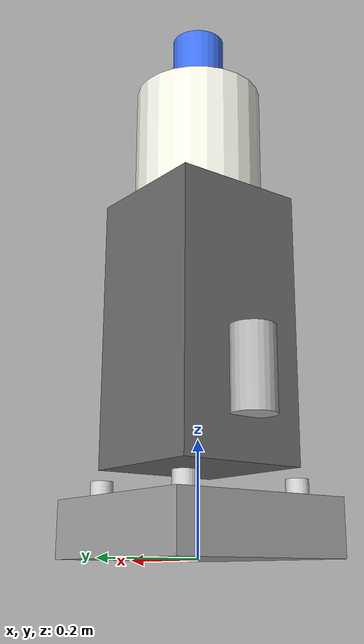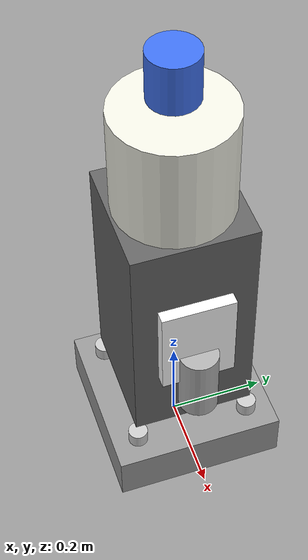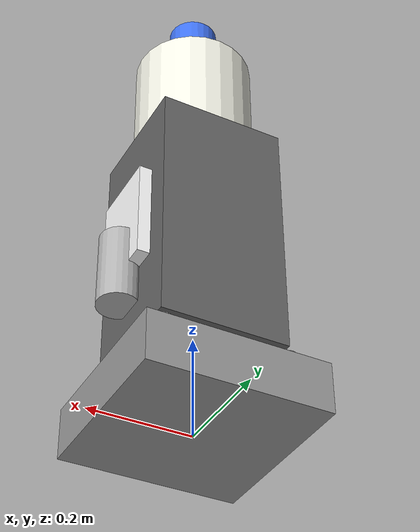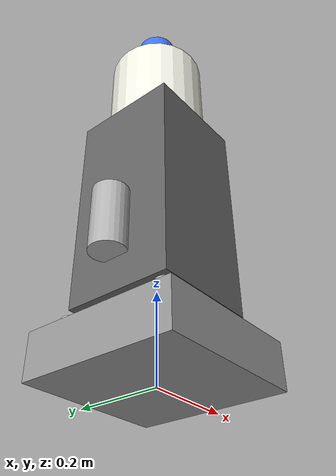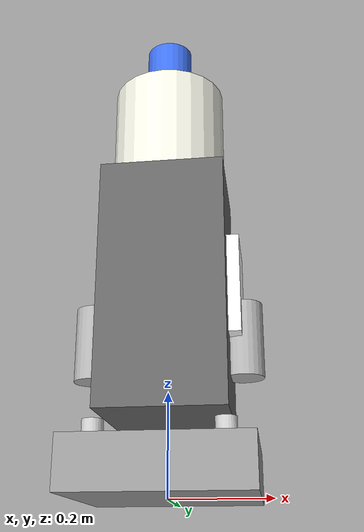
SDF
<?xml version="1.0"?>

<sdf version="1.10">

<model name="pt_transformer_c">

  <static>true</static>

  <link name="body">

    <!-- MAIN PT HOUSING -->
    <visual name="pt_body">
      <pose>0 0 0.4 0 0 0</pose>
      <geometry>
        <box>
          <size>0.25 0.25 0.5</size>
        </box>
      </geometry>
      <material>
        <ambient>0.3 0.3 0.3 1</ambient>
        <diffuse>0.4 0.4 0.4 1</diffuse>
      </material>
    </visual>

    <!-- PORCELAIN INSULATOR (PRIMARY) -->
    <visual name="primary_insulator">
      <pose>0 0 0.75 0 0 0</pose>
      <geometry>
        <cylinder>
          <radius>0.12</radius>
          <length>0.25</length>
        </cylinder>
      </geometry>
      <material>
        <ambient>0.9 0.9 0.85 1</ambient>
        <diffuse>0.95 0.95 0.9 1</diffuse>
        <specular>0.3 0.3 0.3 1</specular>
      </material>
    </visual>

    <!-- TERMINAL STUDS -->
    <visual name="terminal_primary">
      <pose>0 0 0.95 0 0 0</pose>
      <geometry>
        <cylinder>
          <radius>0.05</radius>
          <length>0.1</length>
        </cylinder>
      </geometry>
      <material>
        <ambient>0.15 0.35 0.85 1</ambient>
        <diffuse>0.25 0.45 0.95 1</diffuse>
      </material>
    </visual>

    <!-- SECONDARY TERMINALS (SIDE) -->
    <visual name="terminal_sec_1">
      <pose>0.15 0 0.3 0 0 0</pose>
      <geometry>
        <cylinder>
          <radius>0.04</radius>
          <length>0.15</length>
        </cylinder>
      </geometry>
      <material>
        <ambient>0.6 0.6 0.6 1</ambient>
        <diffuse>0.7 0.7 0.7 1</diffuse>
      </material>
    </visual>

    <visual name="terminal_sec_2">
      <pose>-0.15 0 0.3 0 0 0</pose>
      <geometry>
        <cylinder>
          <radius>0.04</radius>
          <length>0.15</length>
        </cylinder>
      </geometry>
      <material>
        <ambient>0.6 0.6 0.6 1</ambient>
        <diffuse>0.7 0.7 0.7 1</diffuse>
      </material>
    </visual>

    <!-- MOUNTING BASE -->
    <visual name="base_plate">
      <pose>0 0 0.05 0 0 0</pose>
      <geometry>
        <box>
          <size>0.35 0.35 0.1</size>
        </box>
      </geometry>
      <material>
        <ambient>0.5 0.5 0.5 1</ambient>
        <diffuse>0.6 0.6 0.6 1</diffuse>
      </material>
    </visual>

    <!-- MOUNTING STUDS -->
    <visual name="stud_1">
      <pose>-0.12 -0.12 0.08 0 0 0</pose>
      <geometry>
        <cylinder>
          <radius>0.02</radius>
          <length>0.1</length>
        </cylinder>
      </geometry>
      <material>
        <ambient>0.7 0.7 0.7 1</ambient>
        <diffuse>0.8 0.8 0.8 1</diffuse>
      </material>
    </visual>

    <visual name="stud_2">
      <pose>0.12 -0.12 0.08 0 0 0</pose>
      <geometry>
        <cylinder>
          <radius>0.02</radius>
          <length>0.1</length>
        </cylinder>
      </geometry>
      <material>
        <ambient>0.7 0.7 0.7 1</ambient>
        <diffuse>0.8 0.8 0.8 1</diffuse>
      </material>
    </visual>

    <visual name="stud_3">
      <pose>-0.12 0.12 0.08 0 0 0</pose>
      <geometry>
        <cylinder>
          <radius>0.02</radius>
          <length>0.1</length>
        </cylinder>
      </geometry>
      <material>
        <ambient>0.7 0.7 0.7 1</ambient>
        <diffuse>0.8 0.8 0.8 1</diffuse>
      </material>
    </visual>

    <visual name="stud_4">
      <pose>0.12 0.12 0.08 0 0 0</pose>
      <geometry>
        <cylinder>
          <radius>0.02</radius>
          <length>0.1</length>
        </cylinder>
      </geometry>
      <material>
        <ambient>0.7 0.7 0.7 1</ambient>
        <diffuse>0.8 0.8 0.8 1</diffuse>
      </material>
    </visual>

    <!-- NAMEPLATE -->
    <visual name="nameplate">
      <pose>0.125 0 0.4 0 0 0</pose>
      <geometry>
        <box>
          <size>0.05 0.15 0.2</size>
        </box>
      </geometry>
      <material>
        <ambient>0.95 0.95 0.95 1</ambient>
        <diffuse>1 1 1 1</diffuse>
      </material>
    </visual>

    <!-- COLLISION -->
    <collision name="collision">
      <pose>0 0 0.4 0 0 0</pose>
      <geometry>
        <box>
          <size>0.3 0.3 0.8</size>
        </box>
      </geometry>
    </collision>

  </link>

</model>

</sdf>
